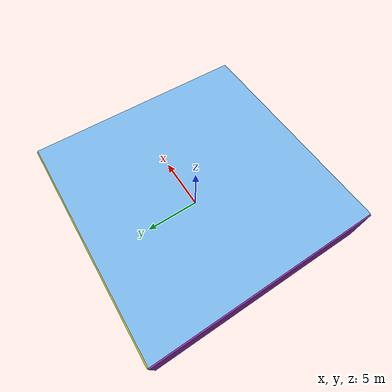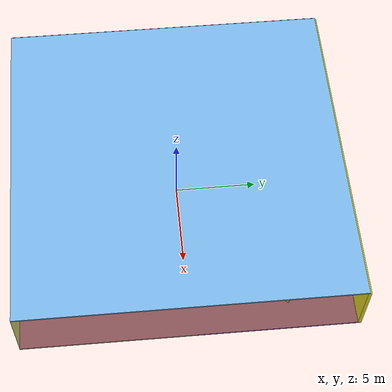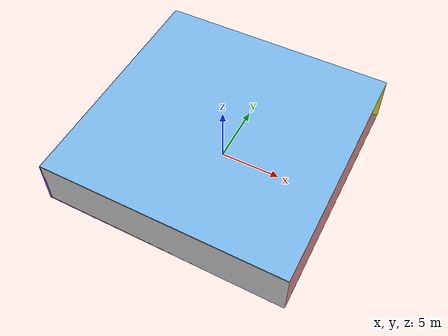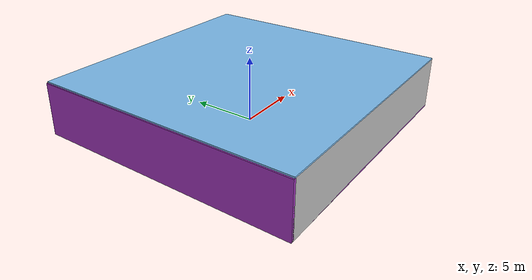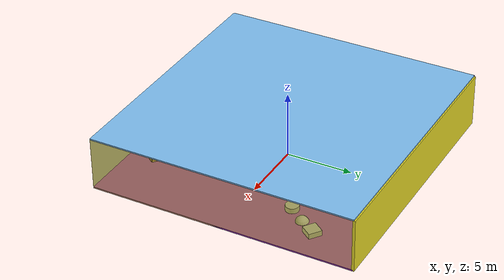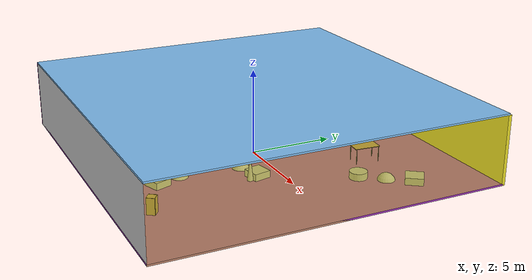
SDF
<sdf version="1.4">
 <world name="default">
  <physics type="ode">
   <max_step_size>0.001</max_step_size>
   <real_time_factor>1</real_time_factor>
   <real_time_update_rate>1000</real_time_update_rate>
   <gravity>0 0 -9.8</gravity>
  </physics>
  <scene><ambient>0.4 0.4 0.4 1</ambient><background>0.7 0.7 0.7 1</background><shadows>1</shadows></scene>
  <model name="Surrounding">
   <static>1</static>
   <link name="Ceiling">
    <collision name="Ceiling_Collision"><geometry><box><size>20 20 0.1</size></box></geometry></collision>
    <visual name="Ceiling_Visual">
     <geometry><box><size>20 20 0.1</size></box></geometry>
     <material>
      <script><uri>file://media/materials/scripts/gazebo.material</uri><name>Gazebo/SkyBlue</name></script>
     </material>
    </visual>
    <pose>0 0 4.05 0 0 0</pose>
   </link>
   <link name="Wall_South">
    <collision name="Wall_South_Collision">
     <geometry><box><size>20 0 4</size></box></geometry>
     <pose>0 0 2 0 -0 0</pose>
    </collision>
    <visual name="Wall_South_Visual">
     <pose>0 0 2 0 -0 0</pose>
     <geometry><box><size>20 0 4</size></box></geometry>
     <material>
      <script><uri>file://media/materials/scripts/gazebo.material</uri><name>Gazebo/JointAnchor</name></script>
     </material>
    </visual>
    <velocity_decay><linear>0</linear><angular>0</angular></velocity_decay>
    <pose>0 -10 0 0 -0 0</pose>
   </link>
   <link name="Wall_East">
    <collision name="Wall_21_Collision">
     <geometry><box><size>20 0 4</size></box></geometry>
     <pose>0 0 2 0 -0 0</pose>
    </collision>
    <visual name="Wall_21_Visual">
     <pose>0 0 2 0 -0 0</pose>
     <geometry><box><size>20 0 4</size></box></geometry>
     <material>
      <script>
       <uri>file://media/materials/scripts/gazebo.material</uri>
       <name>Gazebo/YellowTransparent</name>
      </script>
     </material>
    </visual>
    <velocity_decay><linear>0</linear><angular>0</angular></velocity_decay>
    <pose>10 0 0 0 -0 1.5708</pose>
   </link>
   <link name="Wall_North">
    <collision name="Wall_22_Collision">
     <geometry><box><size>20 0.2 4</size></box></geometry>
     <pose>0 0 2 0 -0 0</pose>
    </collision>
    <visual name="Wall_22_Visual">
     <pose>0 0 2 0 -0 0</pose>
     <geometry><box><size>20 0.2 4</size></box></geometry>
     <material>
      <script><uri>file://media/materials/scripts/gazebo.material</uri><name>Gazebo/YellowGlow</name></script>
     </material>
    </visual>
    <velocity_decay><linear>0</linear><angular>0</angular></velocity_decay>
    <pose>0 10 0 0 -0 0</pose>
   </link>
   <link name="Wall_West">
    <collision name="Wall_23_Collision">
     <geometry><box><size>20 0.2 4</size></box></geometry>
     <pose>0 0 2 0 -0 0</pose>
    </collision>
    <visual name="Wall_23_Visual">
     <pose>0 0 2 0 -0 0</pose>
     <geometry><box><size>20 0.2 4</size></box></geometry>
     <material>
      <script><uri>file://media/materials/scripts/gazebo.material</uri><name>Gazebo/PurpleGlow</name></script>
     </material>
    </visual>
    <velocity_decay><linear>0</linear><angular>0</angular></velocity_decay>
    <pose>-10 0 0 0 0 -1.5708</pose>
   </link>
   <link name="Ground_link">
    <collision name="collision">
     <pose>0 0 .05 0 -0 0</pose>
     <geometry><box><size>20 20 0.1</size></box></geometry>
    </collision>
    <visual name="visual">
     <pose>0 0 .05 0 -0 0</pose>
     <geometry><box><size>20 20 0.1</size></box></geometry>
     <material>
      <script><uri>file://media/materials/scripts/gazebo.material</uri><name>Gazebo/Purple</name></script>
     </material>
    </visual>
   </link>
   <static>1</static>
  </model>
  <spherical_coordinates>
   <surface_model>EARTH_WGS84</surface_model>
   <latitude_deg>0</latitude_deg>
   <longitude_deg>0</longitude_deg>
   <elevation>0</elevation>
   <heading_deg>0</heading_deg>
  </spherical_coordinates>
  <light name="lightball_0" type="diffuse">
   <diffuse>0.8 0.8 0.8 1</diffuse>
   <specular>0.2 0.2 0.2 1</specular>
   <attenuation>
    <range>100</range>
    <constant>0.7</constant>
    <linear>0.01</linear>
    <quadratic>0.001</quadratic>
   </attenuation>
   <direction>-0.5 0.1 -0.9</direction>
   <pose>-3.25549692556 9.67961433392 2.27916172694 0 0 0</pose>
  </light>
  <include>
   <uri>model://textured_shapes</uri>
   <pose>1.67741865315 -5.24170562674 0 0 0 0.341848215846</pose>
  </include>
  <include>
   <uri>model://textured_shapes</uri>
   <pose>1.97121400412 -1.71846444429 0 0 0 1.78474699974</pose>
  </include>
  <include><uri>model://cabinet</uri><pose>1.19755317874 6.76183960695 0 0 0 2.83238602361</pose></include>
  <include><uri>model://cabinet</uri><pose>5.21471478531 -8.0568791978 0 0 0 0.942282385448</pose></include>
  <include>
   <uri>model://construction_cone</uri>
   <pose>3.71072761081 -1.95417836312 0 0 0 2.8694753554</pose>
  </include>
  <include><uri>model://table</uri><pose>4.00701219122 5.06311552429 0 0 0 1.49235512515</pose></include>
  <include>
   <uri>model://textured_shapes</uri>
   <pose>6.82519941489 4.67376208976 0 0 0 2.51283042101</pose>
  </include>
 </world>
</sdf>

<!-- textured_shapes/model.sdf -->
<sdf version="1.6">
  <model name="textured_shapes">
    <pose>0 0 0.5 0 0 0</pose>
    <link name="box">
      <pose>0 -1.5 0 0 0 0</pose>
      <collision name="collision">
        <geometry>
          <box>
            <size>1 1 1</size>
          </box>
        </geometry>
      </collision>
      <visual name="visual">
        <geometry>
          <box>
            <size>1 1 1</size>
          </box>
        </geometry>
        <material>
          <script>
            <uri>model://../model_source/models/textured_shapes/materials/scripts</uri>
            <uri>model://../model_source/models/textured_shapes/materials/textures</uri>
            <name>TexturedShape/Squares</name>
          </script>
        </material>
      </visual>
    </link>
    <link name="sphere">
      <collision name="collision">
        <geometry>
          <sphere>
            <radius>0.5</radius>
          </sphere>
        </geometry>
      </collision>
      <visual name="visual">
        <geometry>
          <sphere>
            <radius>0.5</radius>
          </sphere>
        </geometry>
        <material>
          <script>
            <uri>model://../model_source/models/textured_shapes/materials/scripts</uri>
            <uri>model://../model_source/models/textured_shapes/materials/textures</uri>
            <name>TexturedShape/Squares</name>
          </script>
        </material>
      </visual>
    </link>
    <link name="cylinder">
      <pose>0 1.5 0 0 0 0</pose>
      <collision name="collision">
        <geometry>
          <cylinder>
            <radius>0.5</radius>
            <length>1</length>
          </cylinder>
        </geometry>
      </collision>
      <visual name="visual">
        <geometry>
          <cylinder>
            <radius>0.5</radius>
            <length>1</length>
          </cylinder>
        </geometry>
        <material>
          <script>
            <uri>model://../model_source/models/textured_shapes/materials/scripts</uri>
            <uri>model://../model_source/models/textured_shapes/materials/textures</uri>
            <name>TexturedShape/Squares</name>
          </script>
        </material>
      </visual>
    </link>
  </model>
</sdf>

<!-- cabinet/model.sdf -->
<sdf version="1.5">
  <model name="cabinet">
    <static>true</static>
    <link name="cabinet_bottom_plate">
      <inertial>
        <pose>0 0 -1 0 0 0</pose>
        <inertia>
          <ixx>2.050000</ixx>
          <ixy>0</ixy>
          <ixz>0</ixz>
          <iyy>2.050000</iyy>
          <iyz>0</iyz>
          <izz>2.050000</izz>
        </inertia>
        <mass>25.000000</mass>
      </inertial>
      <collision name="cabinet_bottom_plate_geom">
        <pose>0 0 0.010000 0 0 0</pose>
        <geometry>
          <box>
            <size>0.450000 0.450000 0.020000</size>
          </box>
        </geometry>
      </collision>
      <visual name="cabinet_bottom_plate_geom_visual">
        <pose>0 0 0.010000 0 0 0</pose>
        <geometry>
          <box>
            <size>0.450000 0.450000 0.020000</size>
          </box>
        </geometry>
        <material>
          <script>
            <uri>model://media/materials/scripts/gazebo.material</uri>
            <name>Gazebo/Wood</name>
          </script>
        </material>
      </visual>
      <collision name="cabinet_bottom_plate_geom_cabinet_back_plate">
        <pose>0.235000 0 0.510000 0 0 0</pose>
        <geometry>
          <box>
            <size>0.020000 0.450000 1.020000</size>
          </box>
        </geometry>
      </collision>
      <visual name="cabinet_bottom_plate_geom_cabinet_back_plate_visual">
        <pose>0.235000 0 0.510000 0 0 0</pose>
        <geometry>
          <box>
            <size>0.020000 0.450000 1.020000</size>
          </box>
        </geometry>
        <material>
          <script>
            <uri>model://media/materials/scripts/gazebo.material</uri>
            <name>Gazebo/Wood</name>
          </script>
        </material>
      </visual>
      <collision name="cabinet_bottom_plate_geom_cabinet_left_plate">
        <pose>0 0.235000 0.510000 0 0 0</pose>
        <geometry>
          <box>
            <size>0.450000 0.020000 1.020000</size>
          </box>
        </geometry>
      </collision>
      <visual name="cabinet_bottom_plate_geom_cabinet_left_plate_visual">
        <pose>0 0.235000 0.510000 0 0 0</pose>
        <geometry>
          <box>
            <size>0.450000 0.020000 1.020000</size>
          </box>
        </geometry>
        <material>
          <script>
            <uri>model://media/materials/scripts/gazebo.material</uri>
            <name>Gazebo/Wood</name>
          </script>
        </material>
      </visual>
      <collision name="cabinet_bottom_plate_geom_cabinet_middle_plate">
        <pose>0 0 0.510000 0 0 0</pose>
        <geometry>
          <box>
            <size>0.450000 0.450000 0.020000</size>
          </box>
        </geometry>
      </collision>
      <visual name="cabinet_bottom_plate_geom_cabinet_middle_plate_visual">
        <pose>0 0 0.510000 0 0 0</pose>
        <geometry>
          <box>
            <size>0.450000 0.450000 0.020000</size>
          </box>
        </geometry>
        <material>
          <script>
            <uri>model://media/materials/scripts/gazebo.material</uri>
            <name>Gazebo/Wood</name>
          </script>
        </material>
      </visual>
      <collision name="cabinet_bottom_plate_geom_cabinet_right_plate">
        <pose>0 -0.235000 0.510000 0 0 0</pose>
        <geometry>
          <box>
            <size>0.450000 0.020000 1.020000</size>
          </box>
        </geometry>
      </collision>
      <visual name="cabinet_bottom_plate_geom_cabinet_right_plate_visual">
        <pose>0 -0.235000 0.510000 0 0 0</pose>
        <geometry>
          <box>
            <size>0.450000 0.020000 1.020000</size>
          </box>
        </geometry>
        <material>
          <script>
            <uri>model://media/materials/scripts/gazebo.material</uri>
            <name>Gazebo/Wood</name>
          </script>
        </material>
      </visual>
      <collision name="cabinet_bottom_plate_geom_cabinet_top_plate">
        <pose>0 0 1.010000 0 0 0</pose>
        <geometry>
          <box>
            <size>0.450000 0.450000 0.020000</size>
          </box>
        </geometry>
      </collision>
      <visual name="cabinet_bottom_plate_geom_cabinet_top_plate_visual">
        <pose>0 0 1.010000 0 0 0</pose>
        <geometry>
          <box>
            <size>0.450000 0.450000 0.020000</size>
          </box>
        </geometry>
        <material>
          <script>
            <uri>model://media/materials/scripts/gazebo.material</uri>
            <name>Gazebo/Wood</name>
          </script>
        </material>
      </visual>
    </link>
  </model>
</sdf>

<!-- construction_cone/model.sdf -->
<sdf version="1.5">
  <model name="Construction Cone">
    <link name="link">
      <collision name="collision">
        <geometry>
          <mesh>
            <scale>10 10 10</scale>
            <uri>file://isr-testbed/construction_cone/meshes/construction_cone.dae</uri>
          </mesh>
        </geometry>
      </collision>
      <visual name="visual">
        <geometry>
          <mesh>
            <scale>10 10 10</scale>
            <uri>file://isr-testbed/construction_cone/meshes/construction_cone.dae</uri>
          </mesh>
        </geometry>
      </visual>
    </link>
  </model>
</sdf>

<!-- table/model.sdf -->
<sdf version="1.5">
  <model name="table">
    <static>true</static>
    <link name="link">
      <collision name="surface">
        <pose>0 0 1.0 0 0 0</pose>
        <geometry>
          <box>
            <size>1.5 0.8 0.03</size>
          </box>
        </geometry>
        <surface>
          <friction>
            <ode>
              <mu>0.6</mu>
              <mu2>0.6</mu2>
            </ode>
          </friction>
        </surface>
      </collision>
      <visual name="visual1">
        <pose>0 0 1.0 0 0 0</pose>
        <geometry>
          <box>
            <size>1.5 0.8 0.03</size>
          </box>
        </geometry>
        <material>
          <script>
            <uri>model://media/materials/scripts/gazebo.material</uri>
            <name>Gazebo/Wood</name>
          </script>
        </material>
      </visual>
      <collision name="front_left_leg">
        <pose>0.68 0.38 0.5 0 0 0</pose>
        <geometry>
          <cylinder>
            <radius>0.02</radius>
            <length>1.0</length>
          </cylinder>
        </geometry>
      </collision>
      <visual name="front_left_leg">
        <pose>0.68 0.38 0.5 0 0 0</pose>
        <geometry>
          <cylinder>
            <radius>0.02</radius>
            <length>1.0</length>
          </cylinder>
        </geometry>
        <material>
          <script>
            <uri>model://media/materials/scripts/gazebo.material</uri>
            <name>Gazebo/Grey</name>
          </script>
        </material>
      </visual>
      <collision name="front_right_leg">
        <pose>0.68 -0.38 0.5 0 0 0</pose>
        <geometry>
          <cylinder>
            <radius>0.02</radius>
            <length>1.0</length>
          </cylinder>
        </geometry>
      </collision>
      <visual name="front_right_leg">
        <pose>0.68 -0.38 0.5 0 0 0</pose>
        <geometry>
          <cylinder>
            <radius>0.02</radius>
            <length>1.0</length>
          </cylinder>
        </geometry>
        <material>
          <script>
            <uri>model://media/materials/scripts/gazebo.material</uri>
            <name>Gazebo/Grey</name>
          </script>
        </material>
      </visual>
      <collision name="back_right_leg">
        <pose>-0.68 -0.38 0.5 0 0 0</pose>
        <geometry>
          <cylinder>
            <radius>0.02</radius>
            <length>1.0</length>
          </cylinder>
        </geometry>
      </collision>
      <visual name="back_right_leg">
        <pose>-0.68 -0.38 0.5 0 0 0</pose>
        <geometry>
          <cylinder>
            <radius>0.02</radius>
            <length>1.0</length>
          </cylinder>
        </geometry>
        <material>
          <script>
            <uri>model://media/materials/scripts/gazebo.material</uri>
            <name>Gazebo/Grey</name>
          </script>
        </material>
      </visual>
      <collision name="back_left_leg">
        <pose>-0.68 0.38 0.5 0 0 0</pose>
        <geometry>
          <cylinder>
            <radius>0.02</radius>
            <length>1.0</length>
          </cylinder>
        </geometry>
      </collision>
      <visual name="back_left_leg">
        <pose>-0.68 0.38 0.5 0 0 0</pose>
        <geometry>
          <cylinder>
            <radius>0.02</radius>
            <length>1.0</length>
          </cylinder>
        </geometry>
        <material>
          <script>
            <uri>model://media/materials/scripts/gazebo.material</uri>
            <name>Gazebo/Grey</name>
          </script>
        </material>
      </visual>
    </link>
  </model>
</sdf>
